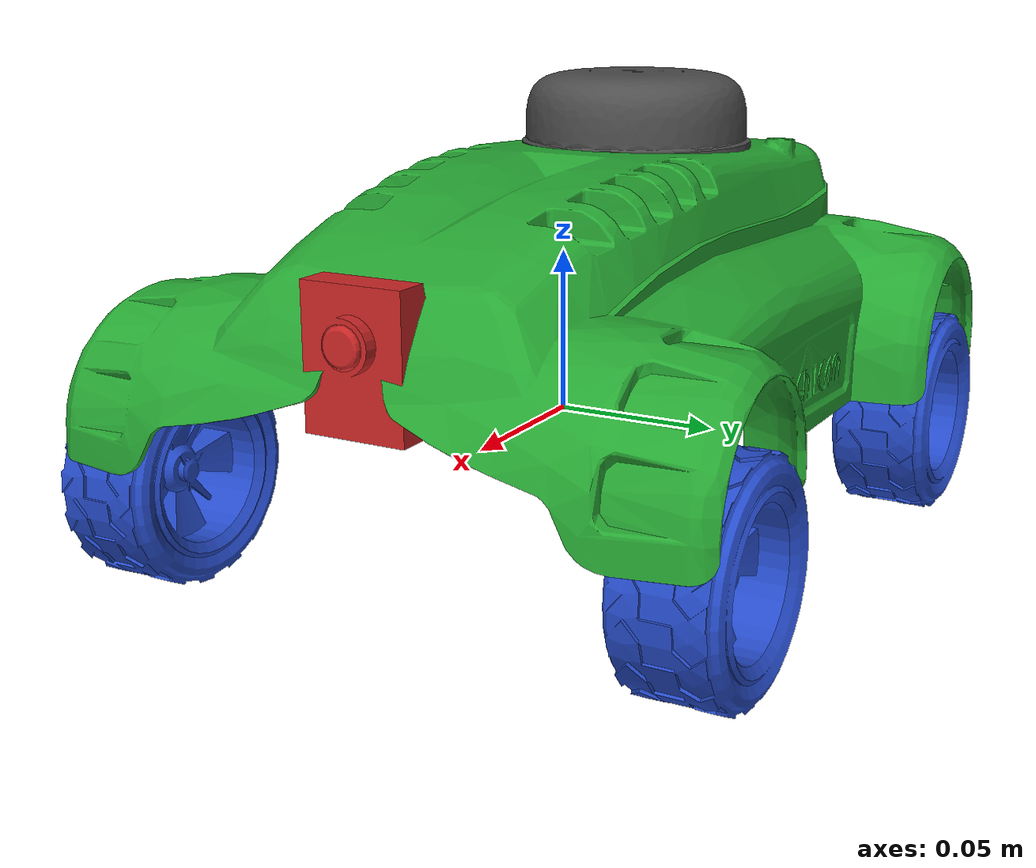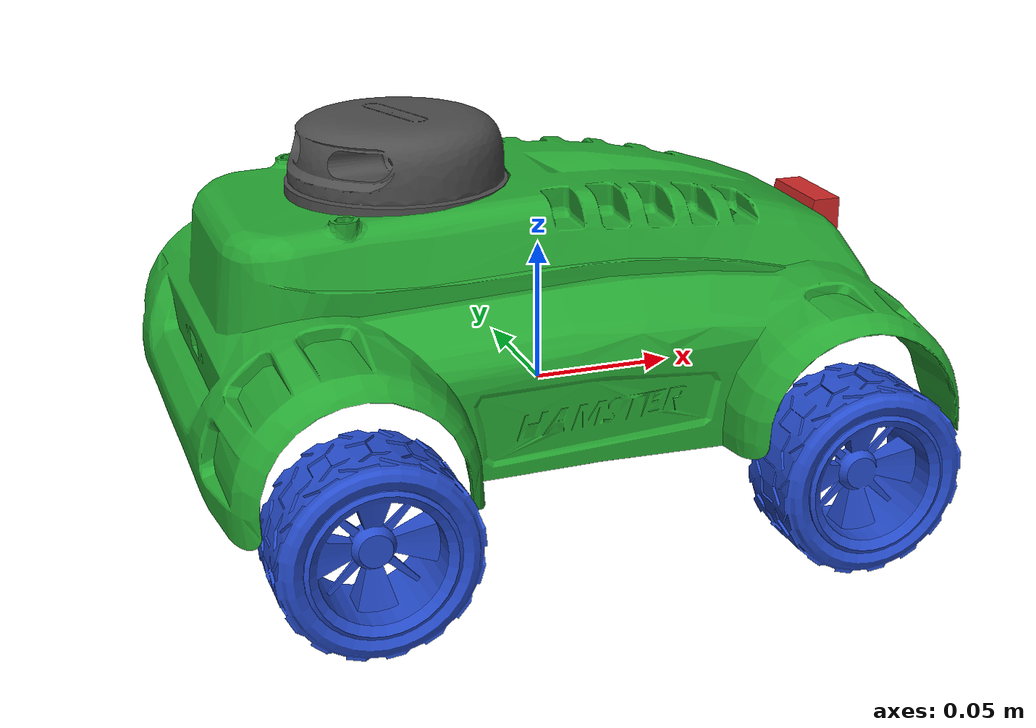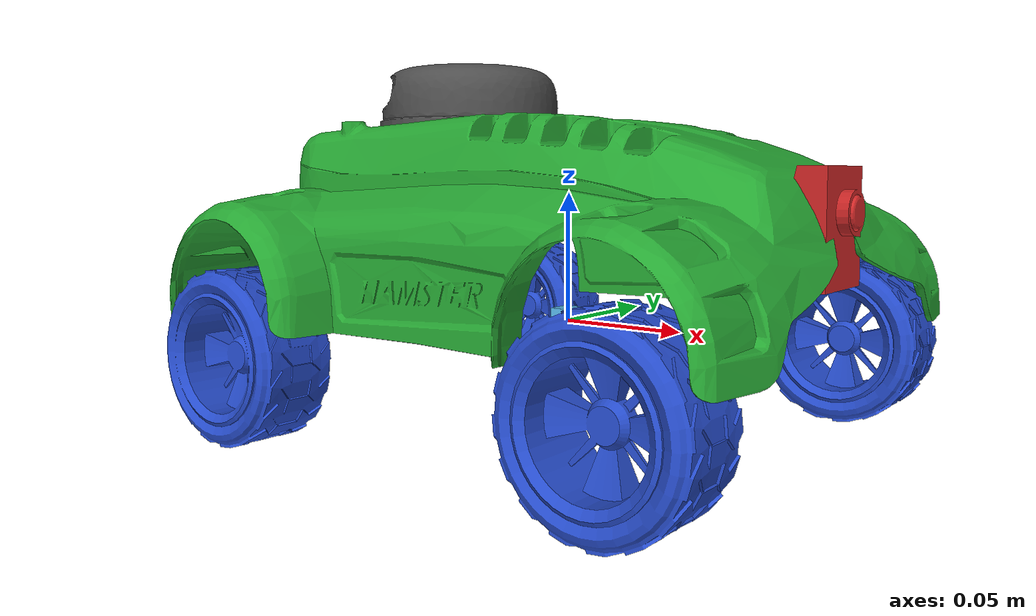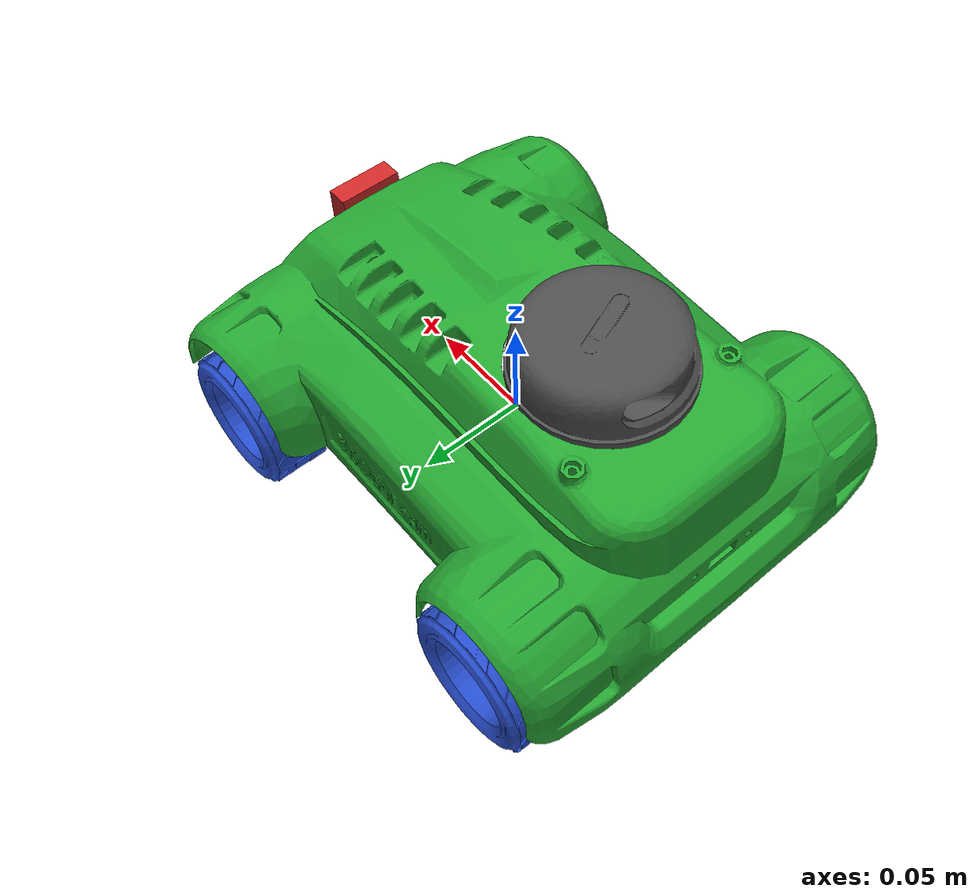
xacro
<?xml version="1.0"?>

<robot name="hamster" xmlns:xacro="http://www.ros.org/wiki/xacro">

  <xacro:include filename="$(find myhamster_simulation)/urdf/front_wheel.urdf.xacro" />
  <xacro:include filename="$(find myhamster_simulation)/urdf/rear_wheel.urdf.xacro" />

  <xacro:macro name="solid_cuboid_inertia" params="w h d m">
  <inertia  ixx="${m*(h*h+d*d)/12}" ixy = "0" ixz = "0"
            iyy="${m*(w*w+d*d)/12}" iyz = "0"
            izz="${m*(w*w+h*h)/12}" />
  </xacro:macro>

  <xacro:arg name="agent" default="agent1" />
  <xacro:arg name="robot_version" default="V6"/>

  <xacro:property name="version" value="$(arg robot_version)"/>

  <!--link name="dummy"/-->

  <link name="base_link">
    <inertial>
      <mass value="3.0" />
      <solid_cuboid_inertia w="0.1" h="0.1" d="0.3" m="3.0"/>
    </inertial>
    <visual>
      <geometry>
        <mesh filename="package://myhamster_simulation/meshes/shell.dae" />
      </geometry>
    </visual>
    <collision>
      <geometry>
        <box size="0.25 0.09 0.02" />
      </geometry>
    </collision>
  </link>

  <gazebo reference="base_link">
    <material>Gazebo/Green</material>
  </gazebo>

  <link name="imu_link">
    <inertial>
      <mass value="0.01" />
      <solid_cuboid_inertia w="0.05" h="0.05" d="0.07" m="0.01"/>
    </inertial>
    <visual>
      <geometry>
        <box size="0.01 0.01 0.01" />
      </geometry>
    </visual>
    </link>

  <joint name="imu_link_joint" type="fixed">
    <origin xyz="0 0 0" rpy="0 0 0" />
    <parent link="base_link" />
    <child  link="imu_link" />
  </joint>

  <joint name="hokuyo_joint" type="fixed">
    <axis xyz="0 1 0" />
    <origin xyz="-0.05 0 0.09" rpy="0 0 0"/>
    <parent link="base_link"/>
    <child link="lidar_link"/>
  </joint>

  <joint name="camera_joint" type="fixed">
    <xacro:if value="${version == 'V7'}">
      <origin xyz="0.12673 0 0.028" rpy="0 0 0"/>
    </xacro:if>
      <xacro:if value="${version == 'V6'}">
      <origin xyz="0.1 0 0.02" rpy="0 0 0"/>
    </xacro:if>
    <parent link="base_link"/>
    <child link="camera_link"/>
  </joint>

  <xacro:if value="${version == 'V7'}">
    <link name="camera_optical_frame_link"/>
      <joint name="camera_optical_joint" type="fixed">
        <origin xyz="0 0 0" rpy="-1.57 0 -1.57"/>
        <parent link="camera_link"/>
        <child link="camera_optical_frame_link"/>
      </joint>
  </xacro:if>

  <!-- Hokuyo Laser -->
  <link name="lidar_link">
    <visual>
      <geometry>
        <mesh filename="package://myhamster_simulation/meshes/A2_lidar.dae" />
      </geometry>
    </visual>
  </link>

  <link name="camera_link">
    <collision>
      <geometry>
    <box size="0.01 0.01 0.01"/>
      </geometry>
    </collision>
    <visual>
      <geometry>
        <xacro:if value="${version == 'V7'}">
        <mesh filename="package://myhamster_simulation/meshes/d415.stl" />
        </xacro:if>
        <xacro:if value="${version == 'V6'}">
        <mesh filename="package://myhamster_simulation/meshes/camera.stl" />
        </xacro:if>
      </geometry>
      <material name="red"/>
    </visual>
    <inertial>
      <mass value="1e-5" />
      <inertia ixx="1e-6" ixy="0" ixz="0" iyy="1e-6" iyz="0" izz="1e-6" />
    </inertial>
  </link>

  <front_wheel fr="front" lr="right" parent="base_link" origin_x="0.08" origin_y="-0.086" origin_z="-0.01"/>
  <front_wheel fr="front" lr="left" parent="base_link" origin_x="0.08" origin_y="0.086" origin_z="-0.01"/>
  <rear_wheel fr="rear" lr="right" parent="base_link" origin_x="-0.085" origin_y="-0.086" origin_z="-0.01"/>
  <rear_wheel fr="rear" lr="left" parent="base_link" origin_x="-0.085" origin_y="0.086" origin_z="-0.01"/>

  <gazebo>
    <plugin name="gazebo_ros_control" filename="libgazebo_ros_control.so">
      <robotNamespace></robotNamespace>
      <robotSimType>gazebo_ros_control/DefaultRobotHWSim</robotSimType>
      <legacyModeNS>true</legacyModeNS>
    </plugin>
  </gazebo>

  <gazebo>
    <plugin name="gazebo_ackermann_drive" filename="libgazebo_ackermann_drive.so">
      <robotNamespace></robotNamespace>
      <robotBaseLink>base_link</robotBaseLink>
      <wheelRadius>0.029</wheelRadius>
      <wheelSeparation>0.17</wheelSeparation>
      <wheelBase>0.166</wheelBase>
      <frontLeftWheelJoint>front_left_wheel_joint</frontLeftWheelJoint>
      <frontRightWheelJoint>front_right_wheel_joint</frontRightWheelJoint>
      <reartLeftWheelJoint>rear_left_wheel_joint</reartLeftWheelJoint>
      <rearRightWheelJoint>rear_right_wheel_joint</rearRightWheelJoint>
      <frontRightWheelSteeringJoint>front_right_wheel_steering_joint</frontRightWheelSteeringJoint>
      <frontLeftWheelSteeringJoint>front_left_wheel_steering_joint</frontLeftWheelSteeringJoint>
      <torque>1</torque>
      <baseFrame>base_link</baseFrame>
      <odomFrame>odom</odomFrame>
      <odomTopic>odom</odomTopic>
      <driveTopic>ackermann_cmd</driveTopic>
      <odomNoiseMean>0.0</odomNoiseMean>
      <odomNoiseStddev>0.01</odomNoiseStddev>
      <minSpeed>0.1</minSpeed>
      <maxSpeed>1.2</maxSpeed>
      <hamsterRotationPattern>true</hamsterRotationPattern>
    </plugin>
  </gazebo>

  <gazebo reference="imu_link">
    <gravity>true</gravity>
    <sensor name="imu_sensor" type="imu">
      <always_on>true</always_on>
      <update_rate>100</update_rate>
      <visualize>true</visualize>
      <topic>__default_topic__</topic>
      <plugin filename="libgazebo_ros_imu_sensor.so" name="imu_plugin">
        <topicName>imu</topicName>
        <bodyName>imu_link</bodyName>
        <updateRateHZ>10.0</updateRateHZ>
        <gaussianNoise>0.0</gaussianNoise>
        <xyzOffset>0 0 0</xyzOffset>
        <rpyOffset>0 0 0</rpyOffset>
        <frameName>imu_link</frameName>
      </plugin>
    </sensor>
  </gazebo>

  <gazebo reference="lidar_link">
    <sensor type="ray" name="head_hokuyo_sensor">
      <pose>0 0 0 0 0 0</pose>
      <visualize>false</visualize>
      <update_rate>10</update_rate>
      <ray>
        <scan>
          <horizontal>
            <samples>360</samples>
            <resolution>1</resolution>
            <min_angle>-3.1415</min_angle>
            <max_angle>3.1415</max_angle>
          </horizontal>
        </scan>
        <range>
          <min>0.10</min>
          <max>12.0</max>
          <resolution>0.01</resolution>
        </range>
        <noise>
          <type>gaussian</type>
          <mean>0.0</mean>
          <stddev>0.01</stddev>
        </noise>
      </ray>
      <plugin name="gazebo_ros_head_hokuyo_controller" filename="libgazebo_ros_laser.so">
        <topicName>scan</topicName>
        <frameName>lidar_link</frameName>
      </plugin>
    </sensor>
    <material>Gazebo/DarkGrey</material>
  </gazebo>

  <xacro:if value="${version == 'V7'}">
    <gazebo reference="camera_link">
      <sensor name="depth_camera" type="depth">
        <update_rate>15</update_rate>
        <camera>
          <horizontal_fov>1.5882496</horizontal_fov>
          <image>
            <width>640</width>
            <height>480</height>
            <format>B8G8R8</format>
          </image>
          <clip>
            <near>0.05</near>
            <far>200</far>
          </clip>
        </camera>
        <plugin name="camera_controller" filename="libgazebo_ros_openni_kinect.so">
          <baseline>0.2</baseline>
          <alwaysOn>true</alwaysOn>
          <updateRate>30.0</updateRate>
          <cameraName></cameraName>
          <imageTopicName>camera/color/image_raw</imageTopicName>
          <cameraInfoTopicName>camera/color/camera_info</cameraInfoTopicName>
          <depthImageTopicName>camera/depth/image_raw</depthImageTopicName>
          <depthImageInfoTopicName>camera/depth/camera_info</depthImageInfoTopicName>
          <pointCloudTopicName>camera/depth/points</pointCloudTopicName>
          <frameName>camera_optical_frame_link</frameName>
          <pointCloudCutoff>0.5</pointCloudCutoff>
          <pointCloudCutoffMax>5.0</pointCloudCutoffMax>
          <distortionK1>0.00000001</distortionK1>
          <distortionK2>0.00000001</distortionK2>
          <distortionK3>0.00000001</distortionK3>
          <distortionT1>0.00000001</distortionT1>
          <distortionT2>0.00000001</distortionT2>
          <CxPrime>0</CxPrime>
          <Cx>0</Cx>
          <Cy>0</Cy>
          <focalLength>0</focalLength>
          <hackBaseline>0</hackBaseline>
        </plugin>
      </sensor>
    </gazebo>
  </xacro:if>

  <xacro:if value="${version == 'V6'}">
    <gazebo reference="camera_link">
      <sensor type="camera" name="camera1">
        <update_rate>30.0</update_rate>
        <camera name="head">
          <horizontal_fov>1.3962634</horizontal_fov>
          <image>
            <width>800</width>
            <height>800</height>
            <format>R8G8B8</format>
          </image>
          <clip>
            <near>0.02</near>
            <far>300</far>
          </clip>
          <noise>
            <type>gaussian</type>
            <!-- Noise is sampled independently per pixel on each frame.
                 That pixel's noise value is added to each of its color
                 channels, which at that point lie in the range [0,1]. -->
            <mean>0.0</mean>
            <stddev>0.007</stddev>
          </noise>
        </camera>
        <plugin name="camera_controller" filename="libgazebo_ros_camera.so">
          <alwaysOn>true</alwaysOn>
          <updateRate>0.0</updateRate>
          <cameraName></cameraName>
          <imageTopicName>image_raw</imageTopicName>
          <cameraInfoTopicName>camera_info</cameraInfoTopicName>
          <frameName>camera_link</frameName>
          <hackBaseline>0.07</hackBaseline>
          <distortionK1>0.0</distortionK1>
          <distortionK2>0.0</distortionK2>
          <distortionK3>0.0</distortionK3>
          <distortionT1>0.0</distortionT1>
          <distortionT2>0.0</distortionT2>
        </plugin>
      </sensor>
    </gazebo>
  </xacro:if>

</robot>

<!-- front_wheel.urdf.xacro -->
<robot name="front_wheel" xmlns:xacro="http://www.ros.org/wiki/xacro">

  <!-- Wheels -->
  <xacro:property name="wheel_radius" value="0.029" />
  <xacro:property name="wheel_height" value="0.02" />
  <xacro:property name="wheel_mass" value="0.5" /> <!-- in kg-->

  <xacro:macro name="cylinder_inertia" params="m r h">
    <inertia  ixx="${m*(3*r*r+h*h)/12}" ixy="0" ixz="0"
              iyy="${m*(3*r*r+h*h)/12}" iyz="0"
              izz="${m*r*r/2}" />
  </xacro:macro>

  <xacro:macro name="front_wheel" params="fr lr parent origin_x origin_y origin_z"> <!--fr : front, rear ; lr: left, right -->
    <link name="${fr}_${lr}_wheel">
      <visual>
        <origin xyz="0 0 0" rpy="1.57 0 0" />
        <geometry>
          <mesh filename="package://myhamster_simulation/meshes/hamster_wheel.dae" />
        </geometry>
      </visual>
      <collision>
        <origin xyz="0 0 0" rpy="1.57 0 0" />
        <geometry>
          <cylinder length="0.008" radius="${wheel_radius}" />
        </geometry>
      </collision>
      <inertial>
        <mass value="${wheel_mass}" />
        <origin xyz="0 0 0" rpy="1.57 0 0" />
        <cylinder_inertia  m="${wheel_mass}" r="${wheel_radius}" h="${wheel_height}" />
      </inertial>
    </link>

    <link name="${fr}_${lr}_wheel_steering">
      <collision>
        <origin xyz="0 0.02 0" rpy="0 0 0" />
        <geometry>
          <cylinder length="0.001" radius="0.001" />
        </geometry>
      </collision>
      <inertial>
        <mass value="0.1" />
        <origin xyz="0 0 0" rpy="0 0 0" />
        <cylinder_inertia  m="0.1" r="0.01" h="0.01" />
      </inertial>
    </link>

    <gazebo reference="${fr}_${lr}_wheel">
      <mu1>100.0</mu1>
      <mu2>50.0</mu2>
      <kp>10000000.0</kp>
      <kd>1.0</kd>
      <fdir1>1 0 0</fdir1>
      <material>Gazebo/Blue</material>
    </gazebo>

    <joint name="${fr}_${lr}_wheel_joint" type="continuous">
      <parent link="${fr}_${lr}_wheel_steering"/>
      <child link="${fr}_${lr}_wheel"/>
      <origin xyz="0 0 0" rpy="0 0 0" />
      <axis xyz="0 1 0" rpy="0 0 0" />
      <limit effort="-1" velocity="-1"/>
    </joint>

    <joint name="${fr}_${lr}_wheel_steering_joint" type="continuous">
      <parent link="${parent}"/>
      <child link="${fr}_${lr}_wheel_steering"/>
      <origin xyz="${origin_x} ${origin_y} ${origin_z}" rpy="0 0 0" />
      <axis xyz="0 0 1" rpy="0 0 0" />
      <limit effort="30" velocity="1.5" lower="-0.5" upper="0.5"/>
    </joint>

  </xacro:macro>
</robot>

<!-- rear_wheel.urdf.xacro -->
<robot name="rear_wheel" xmlns:xacro="http://www.ros.org/wiki/xacro">

  <!-- Wheels -->
  <xacro:property name="wheel_radius" value="0.029" />
  <xacro:property name="wheel_height" value="0.02" />
  <xacro:property name="wheel_mass" value="0.5" /> <!-- in kg-->

  <xacro:macro name="cylinder_inertia" params="m r h">
    <inertia  ixx="${m*(3*r*r+h*h)/12}" ixy="0" ixz="0"
              iyy="${m*(3*r*r+h*h)/12}" iyz="0"
              izz="${m*r*r/2}" />
  </xacro:macro>

  <xacro:macro name="rear_wheel" params="fr lr parent origin_x origin_y origin_z"> <!--fr : front, rear ; lr: left, right -->
    <link name="${fr}_${lr}_wheel">
      <visual>
        <origin xyz="0 0 0" rpy="1.57 0 0" />
        <geometry>
          <mesh filename="package://myhamster_simulation/meshes/hamster_wheel.dae" />
        </geometry>
      </visual>
      <collision>
        <origin xyz="0 0 0" rpy="1.57 0 0" />
        <geometry>
          <cylinder length="0.008" radius="${wheel_radius}" />
        </geometry>
      </collision>
      <inertial>
        <mass value="${wheel_mass}" />
        <origin xyz="0 0 0" rpy="1.57 0 0" />
        <cylinder_inertia  m="${wheel_mass}" r="${wheel_radius}" h="${wheel_height}" />
      </inertial>
    </link>

    <gazebo reference="${fr}_${lr}_wheel">
      <mu1>100.0</mu1>
      <mu2>50.0</mu2>
      <kp>10000000.0</kp>
      <kd>1.0</kd>
      <fdir1>1 0 0</fdir1>
      <material>Gazebo/Blue</material>
    </gazebo>

    <joint name="${fr}_${lr}_wheel_joint" type="continuous">
      <parent link="${parent}"/>
      <child link="${fr}_${lr}_wheel"/>
      <origin xyz="${origin_x} ${origin_y} ${origin_z}" rpy="0 0 0" />
      <axis xyz="0 1 0" rpy="0 0 0" />
      <limit effort="-1" velocity="-1"/>
    </joint>

  </xacro:macro>
</robot>
